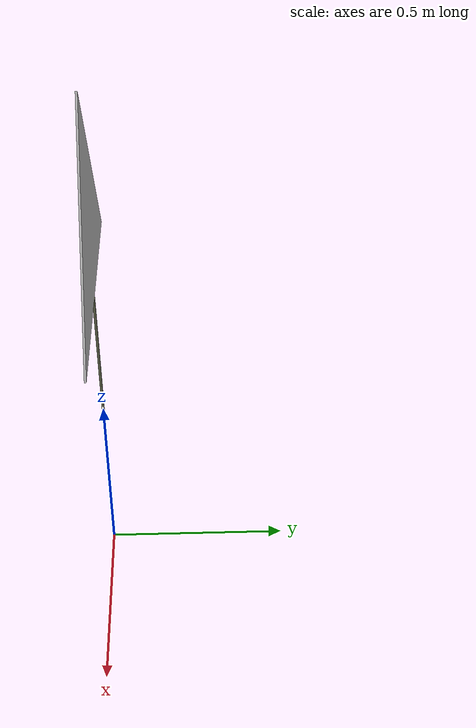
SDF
<?xml version='1.0'?>
<sdf version='1.6'>
  <model name='triangle_sign'>
    <static>true</static>
    <link name="triangle_sign_link">
        <visual name="triangle_sign_visual">
            <geometry>
                <mesh>
                    <scale>0.7 0.7 0.7</scale>
                    <uri>model://triangle_sign/meshes/model.dae</uri>
                </mesh>
            </geometry>
            <material>
                <script>
                    <uri>model://triangle_sign/materials/scripts</uri>
                    <uri>model://triangle_sign/materials/textures</uri>
                    <name>triangle_sign</name>
                </script>
            </material>
        </visual>
        <collision name="triangle_sign_collision">
            <geometry>
                <mesh>
                    <scale>0.7 0.7 0.7</scale>
                    <uri>model://triangle_sign/meshes/model.dae</uri>
                </mesh>
            </geometry>
        </collision>
    </link>
  </model>
</sdf>
